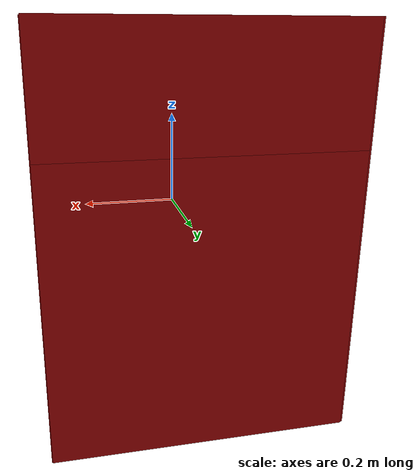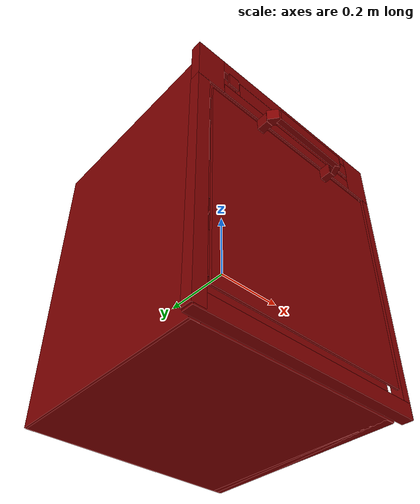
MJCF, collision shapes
<?xml version='1.0' encoding='UTF-8'?>
<mujoco model="model">
  <option timestep="0.002" gravity="0.0 0.0 -9.81"/>
  <compiler angle="radian"/>
  <asset>
    <mesh file="visuals/button_lock.obj" name="button_lock_vis"/>
    <mesh file="visuals/button_power.obj" name="button_power_vis"/>
    <mesh file="visuals/Body001.obj" name="Body001_vis"/>
    <mesh file="visuals/door.obj" name="door_vis"/>
    <mesh file="visuals/rack0.obj" name="rack0_vis"/>
    <mesh file="visuals/rack1.obj" name="rack1_vis"/>
    <texture file="visuals/T_BC001.png" name="Body001_material" type="2d"/>
    <material name="Body001_material" rgba="1 1 1 1.0" texture="Body001_material" shininess="0.2512328028678894" specular="0.5"/>
    <texture file="visuals/T_BC001.png" name="button_lock_material" type="2d"/>
    <material name="button_lock_material" rgba="1 1 1 1.0" texture="button_lock_material" shininess="0.2512328028678894" specular="0.3103448502657381"/>
    <texture file="visuals/T_BC001.png" name="button_power_material" type="2d"/>
    <material name="button_power_material" rgba="1 1 1 1.0" texture="button_power_material" shininess="0.2512328028678894" specular="0.3103448502657381"/>
    <texture file="visuals/T_BC001.png" name="door_material" type="2d"/>
    <material name="door_material" rgba="1 1 1 1.0" texture="door_material" shininess="0.2512328028678894" specular="0.5"/>
    <texture file="visuals/T_BC001.png" name="rack0_material" type="2d"/>
    <material name="rack0_material" rgba="1 1 1 1.0" texture="rack0_material" shininess="0.2512328028678894" specular="5"/>
    <texture file="visuals/T_BC001.png" name="rack1_material" type="2d"/>
    <material name="rack1_material" rgba="1 1 1 1.0" texture="rack1_material" shininess="0.2512328028678894" specular="5"/>
  </asset>
  <default>
    <default class="visual">
      <geom conaffinity="0" contype="0" group="1" type="mesh"/>
    </default>
    <default class="collision">
      <geom group="0" rgba="0.5 0 0 0.5"/>
    </default>
    <default class="spawn">
      <geom group="0" rgba="1 1 1 0.5" contype="0" conaffinity="0"/>
      <site group="0" rgba="1 1 1 0.5"/>
    </default>
    <default class="region">
      <geom group="1" conaffinity="0" contype="0" rgba="0 1 0 0"/>
    </default>
  </default>
  <worldbody>
    <body>
      <body name="object">
        <geom mesh="Body001_vis" type="mesh" solimp="0.998 0.998 0.001" solref="0.001 1" friction="0.95 0.3 0.1" class="visual" material="Body001_material"/>
        <geom class="collision" type="box" pos="0.002270948840305209 0.30219388008117676 -0.004621784668415785" size="0.2934557795524597 0.0311417356133461 0.3999965190887451" quat="1.0 0.0 0.0 0.0"/>
        <geom class="collision" type="box" pos="0.002270943485200405 0.04500756412744522 0.28445860743522644" size="0.2934557795524597 0.2883281409740448 0.11296357214450836" quat="1.0 0.0 0.0 0.0"/>
        <geom class="collision" type="box" pos="0.283699095249176 0.04893629252910614 -0.004621789325028658" size="0.013583042658865452 0.28229135274887085 0.3999965488910675" quat="1.0 0.0 0.0 0.0"/>
        <geom class="collision" type="box" pos="-0.2821372151374817 0.04735734313726425 -0.0036820757668465376" size="0.013743063434958458 0.2838580310344696 0.40093621611595154" quat="1.0 0.0 0.0 0.0"/>
        <geom class="collision" type="box" pos="0.002834443934261799 0.04775632172822952 -0.35406163334846497" size="0.29289230704307556 0.28347134590148926 0.05055676028132439" quat="1.0 0.0 0.0 0.0"/>
        <geom class="collision" type="box" pos="0.001645534299314022 -0.2566308081150055 0.382205605506897" size="0.23946069180965424 0.014339210465550423 0.022390661761164665" quat="1.0 0.0 0.0 0.0"/>
        <geom class="collision" type="box" pos="0.001645534299314022 -0.2566308081150055 0.33316099643707275" size="0.18578501045703888 0.01433902233839035 0.026328712701797485" quat="1.0 0.0 0.0 0.0"/>
        <geom class="collision" type="box" pos="0.001645534299314022 -0.24943575263023376 0.33316099643707275" size="0.24276535212993622 0.007144160568714142 0.0263291634619236" quat="1.0 0.0 0.0 0.0"/>
        <geom class="collision" type="box" pos="0.30705559253692627 -0.25701746344566345 -0.06499844789505005" size="0.011688482016324997 0.01368839479982853 0.3362135589122772" quat="1.0 0.0 0.0 0.0"/>
        <geom class="collision" type="box" pos="-0.3011905550956726 -0.25582897663116455 -0.06303557008504868" size="0.017548171803355217 0.014965040609240532 0.3371136486530304" quat="1.0 0.0 0.0 0.0"/>
        <geom class="collision" type="box" pos="0.0013974723406136036 -0.25582897663116455 -0.3842719495296478" size="0.31603240966796875 0.014965040609240532 0.020346524193882942" quat="1.0 0.0 0.0 0.0"/>
        <geom class="collision" type="box" pos="0.2764629125595093 -0.2566308379173279 0.3379056453704834" size="0.04225406050682068 0.014339236542582512 0.06669051945209503" quat="1.0 0.0 0.0 0.0"/>
        <geom class="collision" type="box" pos="-0.2779802680015564 -0.2566308379173279 0.33790579438209534" size="0.040736645460128784 0.014339236542582512 0.06669066101312637" quat="1.0 0.0 0.0 0.0"/>
        <geom class="collision" type="box" pos="0.002166450023651123 -0.2566308081150055 0.288998544216156" size="0.23795722424983978 0.014339210465550423 0.017687629908323288" quat="1.0 0.0 0.0 0.0"/>
        <geom class="collision" type="box" pos="0.002166450023651123 -0.25403892993927 0.24915501475334167" size="0.28395089507102966 0.011747335083782673 0.03424625098705292" quat="1.0 0.0 0.0 0.0"/>
        <geom class="collision" type="box" pos="-0.26278406381607056 0.0033570234663784504 -0.12307623773813248" size="0.005532166454941034 0.21645356714725494 0.0021562210749834776" quat="1.0 0.0 0.0 0.0"/>
        <geom class="collision" type="box" pos="-0.26278406381607056 0.0033570234663784504 -0.17768573760986328" size="0.005532166454941034 0.21645374596118927 0.002156222239136696" quat="1.0 0.0 0.0 0.0"/>
        <geom class="collision" type="box" pos="-0.26278406381607056 0.0033570234663784504 -0.2356557995080948" size="0.005532166454941034 0.2164539098739624 0.002156223403289914" quat="1.0 0.0 0.0 0.0"/>
        <geom class="collision" type="box" pos="-0.26278406381607056 0.0033570234663784504 -0.06762661039829254" size="0.005532166454941034 0.21645408868789673 0.0021562245674431324" quat="1.0 0.0 0.0 0.0"/>
        <geom class="collision" type="box" pos="-0.26278406381607056 0.0033570234663784504 0.03683154284954071" size="0.005532166454941034 0.21645425260066986 0.0021562257315963507" quat="1.0 0.0 0.0 0.0"/>
        <geom class="collision" type="box" pos="-0.26278406381607056 0.0033570234663784504 0.04747339338064194" size="0.005532166454941034 0.216454416513443 0.002156226895749569" quat="1.0 0.0 0.0 0.0"/>
        <geom class="collision" type="box" pos="-0.26278406381607056 0.0033570234663784504 0.10068264603614807" size="0.005532166454941034 0.21645459532737732 0.002156228059902787" quat="1.0 0.0 0.0 0.0"/>
        <geom class="collision" type="box" pos="-0.27026477456092834 -0.20971053838729858 -0.0668596625328064" size="0.005532166454941034 0.002156232250854373 0.16745759546756744" quat="1.0 0.0 0.0 0.0"/>
        <geom class="collision" type="box" pos="-0.27026477456092834 0.2217143476009369 -0.0668596625328064" size="0.005532166454941034 0.002156234346330166 0.1674576699733734" quat="1.0 0.0 0.0 0.0"/>
        <geom class="collision" type="box" pos="0.26350605487823486 0.008646785281598568 -0.12307623773813248" size="0.005532199516892433 0.2164551019668579 0.0021562317851930857" quat="1.0 0.0 0.0 0.0"/>
        <geom class="collision" type="box" pos="0.26350605487823486 0.008646785281598568 -0.17768573760986328" size="0.005532199516892433 0.21645528078079224 0.002156232949346304" quat="1.0 0.0 0.0 0.0"/>
        <geom class="collision" type="box" pos="0.26350605487823486 0.008646785281598568 -0.23565581440925598" size="0.005532199516892433 0.21645544469356537 0.002156234113499522" quat="1.0 0.0 0.0 0.0"/>
        <geom class="collision" type="box" pos="0.26350605487823486 0.008646785281598568 -0.06762661039829254" size="0.005532199516892433 0.2164556235074997 0.0021562352776527405" quat="1.0 0.0 0.0 0.0"/>
        <geom class="collision" type="box" pos="0.26350605487823486 0.008646785281598568 0.03683154284954071" size="0.005532199516892433 0.21645578742027283 0.0021562364418059587" quat="1.0 0.0 0.0 0.0"/>
        <geom class="collision" type="box" pos="0.26350605487823486 0.008646785281598568 0.04747339338064194" size="0.005532199516892433 0.21645595133304596 0.002156237605959177" quat="1.0 0.0 0.0 0.0"/>
        <geom class="collision" type="box" pos="0.26350605487823486 0.008646785281598568 0.10068265348672867" size="0.005532199516892433 0.21645613014698029 0.0021562387701123953" quat="1.0 0.0 0.0 0.0"/>
        <geom class="collision" type="box" pos="0.27098673582077026 0.2217143476009369 -0.0668596625328064" size="0.005532166920602322 0.00215625180862844 0.16745828092098236" quat="1.0 0.0 0.0 0.0"/>
        <geom class="collision" type="box" pos="0.27098679542541504 -0.20971053838729858 -0.0668596625328064" size="0.005532166920602322 0.002156253904104233 0.16745835542678833" quat="1.0 0.0 0.0 0.0"/>
        <body name="button_lock">
          <joint axis="0.0 1.0 0.0" pos="-0.21002115309238434 -0.2743443250656128 0.3323754668235779" limited="true" name="button_lock_joint" range="0.0 0.004" type="slide" damping="1" frictionloss="1" armature=".01" stiffness="4" springref="-1"/>
          <geom mesh="button_lock_vis" type="mesh" solimp="0.998 0.998 0.001" solref="0.001 1" friction="0.95 0.3 0.1" class="visual" material="button_lock_material"/>
          <geom class="collision" type="box" pos="-0.21002115309238434 -0.27553072571754456 0.3323754668235779" size="0.016192251816391945 0.0023901311215013266 0.021154675632715225" quat="1.0 0.0 0.0 0.0"/>
        </body>
        <body name="button_power">
          <joint axis="0.0 1.0 0.0" pos="0.2092234045267105 -0.2743443250656128 0.3323754668235779" limited="true" name="button_power_joint" range="0.0 0.004" type="slide" damping="1" frictionloss="1" armature=".01" stiffness="4" springref="-1"/>
          <geom mesh="button_power_vis" type="mesh" solimp="0.998 0.998 0.001" solref="0.001 1" friction="0.95 0.3 0.1" class="visual" material="button_power_material"/>
          <geom class="collision" type="box" pos="0.2092234045267105 -0.27553072571754456 0.3323754668235779" size="0.016192251816391945 0.0023901311215013266 0.02115468494594097" quat="1.0 0.0 0.0 0.0"/>
        </body>
        <body name="door">
          <joint axis="1.0 0.0 0.0" pos="0.006062620785087347 -0.2711388133466244 -0.3394463323056698" limited="true" name="door_joint" range="0.0 0.6035987755982988" type="hinge" damping="1" frictionloss="10" armature="1" stiffness="2"/>
          <geom mesh="door_vis" type="mesh" solimp="0.998 0.998 0.001" solref="0.001 1" friction="0.95 0.3 0.1" class="visual" material="door_material"/>
          <geom class="collision" type="box" pos="-0.11946426331996918 -0.2888696491718292 0.23808304965496063" size="0.010053473524749279 0.01570415496826172 0.01735311932861805" quat="1.0 0.0 0.0 0.0"/>
          <geom class="collision" type="box" pos="-0.11625811457633972 -0.3146785795688629 0.23808304965496063" size="0.01003683265298605 0.015267157927155495 0.01735311932861805" quat="0.9445226192474365 0.0 0.0 0.3284463584423065" name="door_handle_2"/>
          <geom class="collision" type="box" pos="0.1170012503862381 -0.28709566593170166 0.23808304965496063" size="0.010053478181362152 0.015349476598203182 0.01735311932861805" quat="1.0 0.0 0.0 0.0"/>
          <geom class="collision" type="box" pos="0.11414425075054169 -0.3152996897697449 0.23808304965496063" size="0.00786184798926115 0.015053094364702702 0.01735311932861805" quat="0.9742051362991333 0.0 0.0 -0.2256641983985901" name="door_handle_1"/>
          <geom class="collision" type="box" pos="0.0012862393632531166 -0.3255290985107422 0.23808304965496063" size="0.11001253128051758 0.00799134187400341 0.01735311932861805" quat="1.0 0.0 0.0 0.0" name="door_handle_main"/>
          <geom class="collision" type="box" pos="0.006062620785087347 -0.267 -0.041804518550634384" size="0.2794951796531677 0.003 0.2976418137550354" quat="1.0 0.0 0.0 0.0" name="door_main"/>
        </body>
        <body name="rack0">
          <geom class="region" name="reg_rack0" type="box" pos="0.0009187385439872742 0.007122308015823364 -0.12079492211341858" size="0.221704086124897 0.17826358771324158 0.09059487080574036"/>
          <joint axis="0.0 -1.0 0.0" pos="0.0014886088902130723 0.00591316819190979 -0.1771361082792282" limited="true" name="rack0_joint" range="0.0 0.14400000000000002" type="slide" damping="1" frictionloss="1" armature=".01" stiffness="0.05"/>
          <geom mesh="rack0_vis" type="mesh" solimp="0.998 0.998 0.001" solref="0.001 1" friction="0.95 0.3 0.1" class="visual" material="rack0_material"/>
          <geom class="collision" type="box" pos="-0.0963621512055397 0.005913173779845238 -0.23199830949306488" size="0.0024885283783078194 0.19438549876213074 0.014615296386182308" quat="0.15898919105529785 -9.620527158322643e-16 0.9872803092002869 1.326495464581967e-07"/>
          <geom class="collision" type="box" pos="0.013931304216384888 0.005913173779845238 -0.23316852748394012" size="0.0024885283783078194 0.19438549876213074 0.014615296386182308" quat="0.24899983406066895 -2.6311786781210277e-15 0.9685035347938538 1.301269634268465e-07"/>
          <geom class="collision" type="box" pos="0.14883191883563995 0.005913173779845238 -0.23479384183883667" size="0.0024885283783078194 0.19438549876213074 0.014615295454859734" quat="0.2927439510822296 -1.3194538845307142e-14 0.9561908841133118 1.2847267782944982e-07"/>
          <geom class="collision" type="box" pos="0.19459091126918793 0.005913173779845238 -0.23428140580654144" size="0.0024885283783078194 0.19438549876213074 0.04257377237081528" quat="0.7895917296409607 2.5004221173500867e-14 0.6136325597763062 8.244701632520446e-08"/>
          <geom class="collision" type="box" pos="0.0831272304058075 0.005913173779845238 -0.23486652970314026" size="0.0024885288439691067 0.19438549876213074 0.0634777694940567" quat="0.7705856561660767 3.3243539350339205e-14 0.6373364329338074 8.563171860487273e-08"/>
          <geom class="collision" type="box" pos="-0.041501447558403015 0.005913173779845238 -0.23223352432250977" size="0.0024885288439691067 0.19438549876213074 0.05279025435447693" quat="0.7867818474769592 3.638509646027889e-14 0.6172311902046204 8.293054065688921e-08"/>
          <geom class="collision" type="box" pos="-0.1626194566488266 0.005913173779845238 -0.22843030095100403" size="0.0024885288439691067 0.19438549876213074 0.06428566575050354" quat="0.7540631294250488 2.1524044008171435e-14 0.6568019390106201 8.824712693922265e-08"/>
          <geom class="collision" type="box" pos="0.23054438829421997 0.00591316819190979 -0.17874950170516968" size="0.002488528611138463 0.19438549876213074 0.04923447594046593" quat="1.0 0.0 0.0 0.0"/>
          <geom class="collision" type="box" pos="0.0016956562176346779 -0.1869753748178482 -0.17325755953788757" size="0.2274533212184906 0.0024885728489607573 0.06267448514699936" quat="1.0 0.0 0.0 0.0"/>
          <geom class="collision" type="box" pos="0.0016956562176346779 0.19985394179821014 -0.17325755953788757" size="0.2274533212184906 0.0024885728489607573 0.06267448514699936" quat="1.0 0.0 0.0 0.0"/>
          <geom class="collision" type="box" pos="-0.23920971155166626 0.005913160741329193 -0.12186144292354584" size="0.0024885283783078194 0.19438549876213074 0.01963345892727375" quat="1.6715887340978952e-07 0.426746666431427 6.416874498427205e-08 -0.9043712019920349"/>
          <geom class="collision" type="box" pos="0.24237048625946045 0.005913160741329193 -0.12186144292354584" size="0.0024885283783078194 0.19438549876213074 0.01963345892727375" quat="0.8787773847579956 2.109912484798363e-15 0.4772319495677948 6.412033570768472e-08"/>
          <geom class="collision" type="box" pos="0.15735438466072083 0.0059131719172000885 -0.20215296745300293" size="0.002488528611138463 0.19438549876213074 0.040634509176015854" quat="1.0 0.0 0.0 0.0"/>
          <geom class="collision" type="box" pos="0.0320236012339592 0.0059131719172000885 -0.20215296745300293" size="0.002488528611138463 0.19438549876213074 0.040634509176015854" quat="1.0 0.0 0.0 0.0"/>
          <geom class="collision" type="box" pos="-0.07470064610242844 0.0059131719172000885 -0.20109976828098297" size="0.002488528611138463 0.19438549876213074 0.040634509176015854" quat="1.0 0.0 0.0 0.0"/>
          <geom class="collision" type="box" pos="-0.1803717017173767 0.0059131719172000885 -0.200046569108963" size="0.002488528611138463 0.19438549876213074 0.040634509176015854" quat="1.0 0.0 0.0 0.0"/>
          <geom class="collision" type="box" pos="-0.22895154356956482 0.00591316819190979 -0.18423491716384888" size="0.002488528611138463 0.19438160955905914 0.05560552328824997" quat="1.0 0.0 0.0 0.0"/>
        </body>
        <body name="rack1">
          <geom class="region" name="reg_rack1" type="box" pos="0.0010286495089530945 0.00713329017162323 0.08964145043864846" size="0.22119612044095993 0.17827456986904144 0.07689776953682304"/>
          <joint axis="0.0 -1.0 0.0" pos="0.0014886088902130723 0.00591316819190979 0.04921133443713188" limited="true" name="rack1_joint" range="0.0 0.27399999999999997" type="slide" damping="1" frictionloss="1" armature=".01" stiffness="0.05"/>
          <geom mesh="rack1_vis" type="mesh" solimp="0.998 0.998 0.001" solref="0.001 1" friction="0.95 0.3 0.1" class="visual" material="rack1_material"/>
          <geom class="collision" type="box" pos="-0.22895154356956482 0.00591316819190979 0.040915489196777344" size="0.002488528611138463 0.1943816840648651 0.05560557171702385" quat="1.0 0.0 0.0 0.0"/>
          <geom class="collision" type="box" pos="0.23054438829421997 0.00591316819190979 0.04640090465545654" size="0.002488528611138463 0.19438549876213074 0.04923447594046593" quat="1.0 0.0 0.0 0.0"/>
          <geom class="collision" type="box" pos="-0.1626194566488266 0.005913173779845238 -0.003279894357547164" size="0.0024885288439691067 0.19438549876213074 0.06428566575050354" quat="0.7540631294250488 2.1524044008171435e-14 0.6568019390106201 8.824712693922265e-08"/>
          <geom class="collision" type="box" pos="-0.041501447558403015 0.005913173779845238 -0.007083116099238396" size="0.0024885288439691067 0.19438549876213074 0.05279025435447693" quat="0.7867818474769592 3.638509646027889e-14 0.6172311902046204 8.293054065688921e-08"/>
          <geom class="collision" type="box" pos="0.0831272304058075 0.005913173779845238 -0.009716115891933441" size="0.0024885288439691067 0.19438549876213074 0.0634777694940567" quat="0.7705856561660767 3.3243539350339205e-14 0.6373364329338074 8.563171860487273e-08"/>
          <geom class="collision" type="box" pos="0.19459091126918793 0.005913173779845238 -0.00913100503385067" size="0.0024885283783078194 0.19438549876213074 0.04257377237081528" quat="0.7895917296409607 2.5004221173500867e-14 0.6136325597763062 8.244701632520446e-08"/>
          <geom class="collision" type="box" pos="0.14883191883563995 0.005913173779845238 -0.009643428027629852" size="0.0024885283783078194 0.19438549876213074 0.014615295454859734" quat="0.2927439510822296 -1.3194538845307142e-14 0.9561908841133118 1.2847267782944982e-07"/>
          <geom class="collision" type="box" pos="0.013931304216384888 0.005913173779845238 -0.008018119260668755" size="0.0024885283783078194 0.19438549876213074 0.014615296386182308" quat="0.24899983406066895 -2.6311786781210277e-15 0.9685035347938538 1.301269634268465e-07"/>
          <geom class="collision" type="box" pos="-0.0963621512055397 0.005913173779845238 -0.006847897078841925" size="0.0024885283783078194 0.19438549876213074 0.014615296386182308" quat="0.15898919105529785 -9.620527158322643e-16 0.9872803092002869 1.326495464581967e-07"/>
          <geom class="collision" type="box" pos="-0.1803717017173767 0.0059131719172000885 0.025103837251663208" size="0.002488528611138463 0.19438549876213074 0.040634509176015854" quat="1.0 0.0 0.0 0.0"/>
          <geom class="collision" type="box" pos="-0.07470064610242844 0.0059131719172000885 0.02405063807964325" size="0.002488528611138463 0.19438549876213074 0.040634509176015854" quat="1.0 0.0 0.0 0.0"/>
          <geom class="collision" type="box" pos="0.0320236012339592 0.0059131719172000885 0.02299743890762329" size="0.002488528611138463 0.19438549876213074 0.040634509176015854" quat="1.0 0.0 0.0 0.0"/>
          <geom class="collision" type="box" pos="0.15735438466072083 0.0059131719172000885 0.02299743890762329" size="0.002488528611138463 0.19438549876213074 0.040634509176015854" quat="1.0 0.0 0.0 0.0"/>
          <geom class="collision" type="box" pos="0.24237048625946045 0.005913160741329193 0.10328896343708038" size="0.0024885283783078194 0.19438549876213074 0.01963345892727375" quat="0.8787773847579956 2.109912484798363e-15 0.4772319495677948 6.412033570768472e-08"/>
          <geom class="collision" type="box" pos="-0.23920971155166626 0.005913160741329193 0.10328896343708038" size="0.0024885283783078194 0.19438549876213074 0.01963345892727375" quat="1.6715887340978952e-07 0.426746666431427 6.416874498427205e-08 -0.9043712019920349"/>
          <geom class="collision" type="box" pos="0.0016956562176346779 0.19985394179821014 0.05189284682273865" size="0.2274533212184906 0.0024885728489607573 0.06267448514699936" quat="1.0 0.0 0.0 0.0"/>
          <geom class="collision" type="box" pos="0.0016956562176346779 -0.1869753748178482 0.05189284682273865" size="0.2274533212184906 0.0024885728489607573 0.06267448514699936" quat="1.0 0.0 0.0 0.0"/>
        </body>
        <geom class="region" name="reg_int" type="box" pos="0.002261713147163391 0.018205925822257996 -0.0655384287238121" size="0.2533445636034012 0.24094244635105133 0.22282954102754593"/>
        <geom class="region" name="reg_main" type="box" pos="0.0 0.03109842538833618 0.0" size="0.31974412298202515 0.3032373914718628 0.405618501663208"/>
      </body>
    </body>
  </worldbody>
  <actuator>
    <motor name="button_lock_joint_actuator" joint="button_lock_joint" gear="0.5"/>
    <motor name="button_power_joint_actuator" joint="button_power_joint" gear="0.5"/>
    <motor name="door_joint_actuator" joint="door_joint" gear="50"/>
    <motor name="rack0_joint_actuator" joint="rack0_joint" gear="50"/>
    <motor name="rack1_joint_actuator" joint="rack1_joint" gear="50"/>
  </actuator>
</mujoco>
